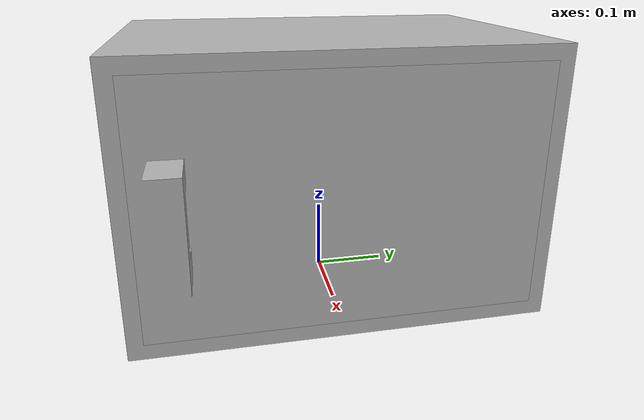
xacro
<?xml version="1.0" ?>
<robot name="garrison" xmlns:xacro="http://www.ros.org/wiki/xacro">

<xacro:include filename="$(find garrison_description)/urdf/materials.xacro" />
<xacro:include filename="$(find garrison_description)/urdf/garrison.trans" />
<xacro:include filename="$(find garrison_description)/urdf/garrison.gazebo" />
<link name="base_link">
  <inertial>
    <origin rpy="0 0 0" xyz="-0.03642857142857139 0.0 0.185"/>
    <mass value="9.299136"/>
    <inertia ixx="0.539239" ixy="0.0" ixz="0.0" iyy="0.330178" iyz="0.0" izz="0.499156"/>
  </inertial>
  <visual>
    <origin rpy="0 0 0" xyz="0 0 0"/>
    <geometry>
      <mesh filename="package://garrison_description/meshes/base_link.stl" scale="0.001 0.001 0.001"/>
    </geometry>
    <material name="silver"/>
  </visual>
  <collision>
    <origin rpy="0 0 0" xyz="0 0 0"/>
    <geometry>
      <mesh filename="package://garrison_description/meshes/base_link.stl" scale="0.001 0.001 0.001"/>
    </geometry>
  </collision>
</link>

<link name="gate_1">
  <inertial>
    <origin rpy="0 0 0" xyz="-0.006938435940099907 -0.26898097089505413 -0.16499999999999998"/>
    <mass value="1.9616639999999996"/>
    <inertia ixx="0.061972" ixy="0.001178" ixz="-0.0" iyy="0.017241" iyz="0.0" izz="0.045438"/>
  </inertial>
  <visual>
    <origin rpy="0 0 0" xyz="-0.195 -0.255 -0.35"/>
    <geometry>
      <mesh filename="package://garrison_description/meshes/gate_1.stl" scale="0.001 0.001 0.001"/>
    </geometry>
    <material name="silver"/>
  </visual>
  <collision>
    <origin rpy="0 0 0" xyz="-0.195 -0.255 -0.35"/>
    <geometry>
      <mesh filename="package://garrison_description/meshes/gate_1.stl" scale="0.001 0.001 0.001"/>
    </geometry>
  </collision>
</link>

<joint name="Rev1" type="revolute">
  <origin rpy="0 0 0" xyz="0.195 0.255 0.35"/>
  <parent link="base_link"/>
  <child link="gate_1"/>
  <axis xyz="0.0 0.0 1.0"/>
  <limit effort="100" lower="0.0" upper="3.141593" velocity="100"/>
</joint>

</robot>

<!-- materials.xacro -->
<robot name="garrison" xmlns:xacro="http://www.ros.org/wiki/xacro" >

<material name="silver">
  <color rgba="0.700 0.700 0.700 1.000"/>
</material>

</robot>

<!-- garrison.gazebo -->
<robot name="garrison" xmlns:xacro="http://www.ros.org/wiki/xacro" >

<xacro:property name="body_color" value="Gazebo/Orange" />

<gazebo>
  <plugin filename="libgazebo_ros_control.so" name="control"/>
</gazebo>
<gazebo reference="base_link">
  <material>${body_color}</material>
  <mu1>1000</mu1>
  <mu2>1000</mu2>
  <selfCollide>true</selfCollide>
  <gravity>true</gravity>
  <static>true</static>
  <kinematic>true</kinematic>
</gazebo>

<gazebo reference="gate_1">
  <material>${body_color}</material>
  <mu1>1000</mu1>
  <mu2>1000</mu2>
  <selfCollide>true</selfCollide>
</gazebo>

<gazebo reference="Rev_1">
    <implicitSpringDamper>1</implicitSpringDamper>
</gazebo>

</robot>
